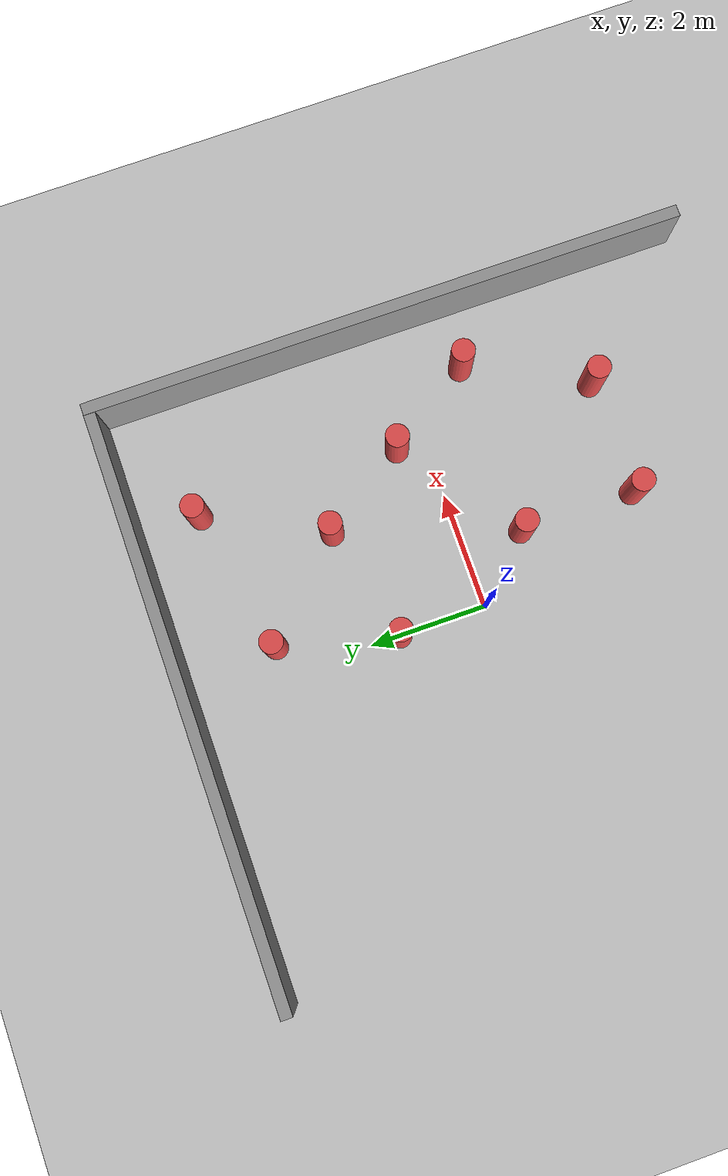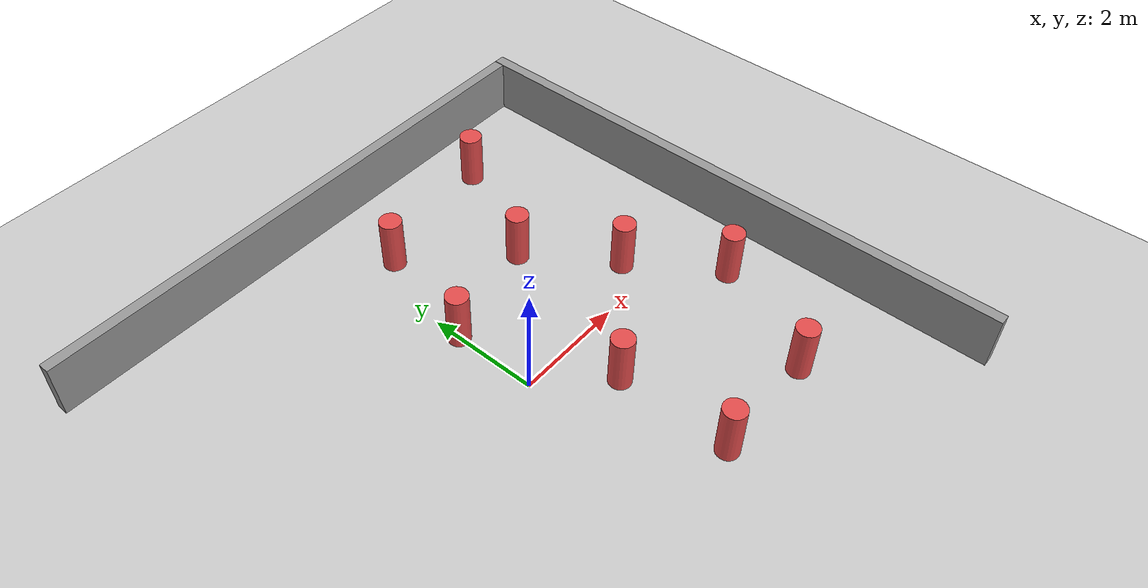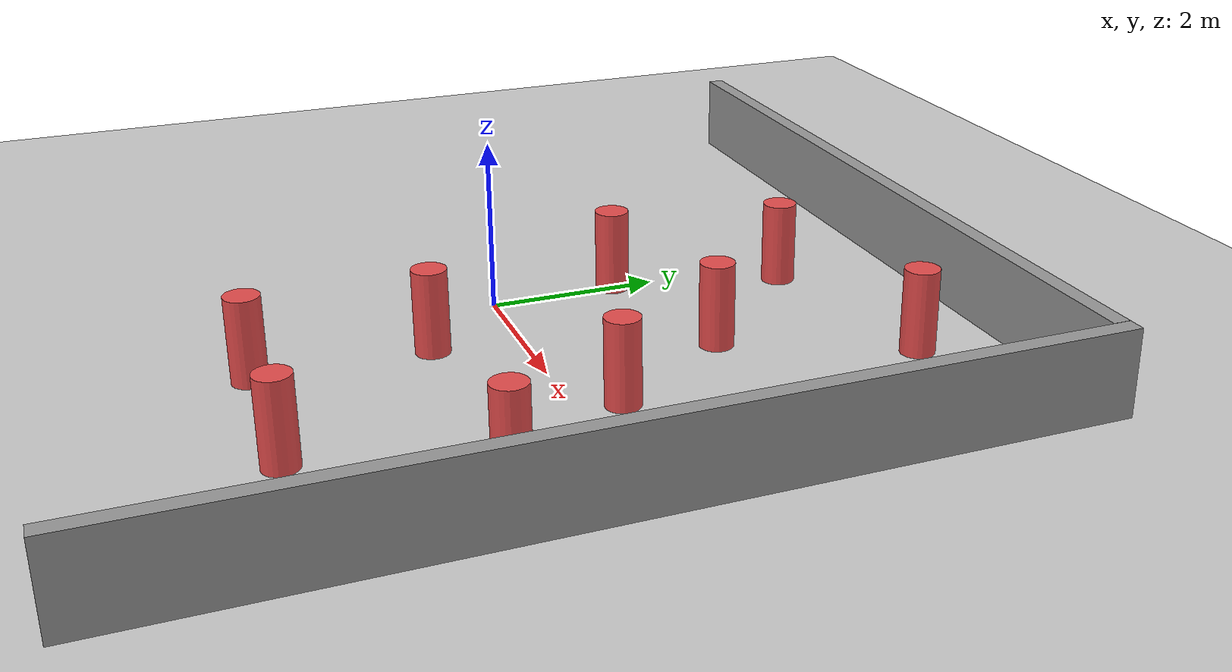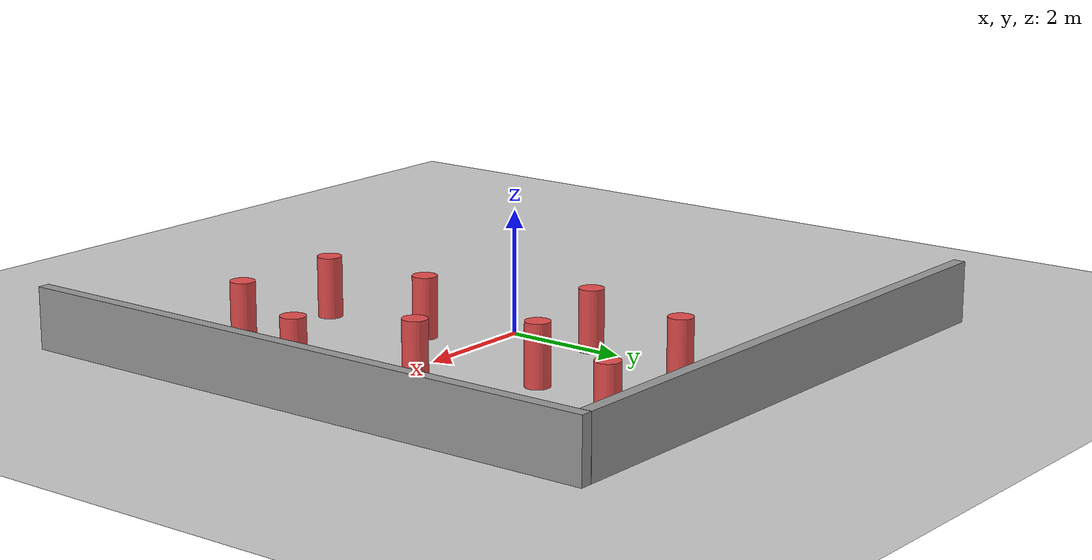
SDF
<sdf version="1.6">
 <world name="default">
  <model name="ground_plane">
   <pose>-4 3.5 0 0 -0 0</pose>
   <static>1</static>
   <link name="link">
    <collision name="collision">
     <geometry><plane><normal>0 0 1</normal><size>100 100</size></plane></geometry>
     <surface>
      <contact><collide_bitmask>65535</collide_bitmask></contact>
      <friction><ode><mu>100</mu><mu2>50</mu2></ode></friction>
     </surface>
    </collision>
    <visual name="visual">
     <cast_shadows>0</cast_shadows>
     <geometry><plane><normal>0 0 1</normal><size>100 100</size></plane></geometry>
     <material>
      <script><uri>file://media/materials/scripts/gazebo.material</uri><name>Gazebo/Grey</name></script>
     </material>
    </visual>
   </link>
  </model>
  <model name="Wall_10m_1_0">
   <link name="link">
    <pose>0 0 0.5 0 -0 0</pose>
    <inertial>
     <mass>1</mass>
     <inertia><ixx>1</ixx><ixy>0</ixy><ixz>0</ixz><iyy>1</iyy><iyz>0</iyz><izz>1</izz></inertia>
    </inertial>
    <visual name="visual">
     <cast_shadows>0</cast_shadows>
     <geometry><box><size>10 0.2 1</size></box></geometry>
     <material>
      <script>
       <uri>model://grey_wall/materials/scripts</uri>
       <uri>model://grey_wall/materials/textures</uri>
       <name>vrc/grey_wall</name>
      </script>
      <shader type="vertex"><normal_map>__default__</normal_map></shader>
      <ambient>1 1 1 1</ambient>
      <diffuse>1 1 1 1</diffuse>
      <specular>0 0 0 1</specular>
      <emissive>0 0 0 1</emissive>
     </material>
    </visual>
    <collision name="collision">
     <geometry><box><size>10 0.2 1</size></box></geometry>
     <surface>
      <friction>
       <ode><mu>1</mu><mu2>1</mu2><fdir1>0 0 0</fdir1><slip1>0</slip1><slip2>0</slip2></ode>
       <torsional>
        <coefficient>1</coefficient>
        <patch_radius>0</patch_radius>
        <surface_radius>0</surface_radius>
        <use_patch_radius>1</use_patch_radius>
        <ode><slip>0</slip></ode>
       </torsional>
      </friction>
      <bounce><restitution_coefficient>0</restitution_coefficient><threshold>1e+06</threshold></bounce>
      <contact>
       <collide_without_contact>0</collide_without_contact>
       <collide_without_contact_bitmask>1</collide_without_contact_bitmask>
       <collide_bitmask>1</collide_bitmask>
       <ode>
        <soft_cfm>0</soft_cfm>
        <soft_erp>0.2</soft_erp>
        <kp>1e+13</kp>
        <kd>1</kd>
        <max_vel>0.01</max_vel>
        <min_depth>0</min_depth>
       </ode>
       <bullet>
        <split_impulse>1</split_impulse>
        <split_impulse_penetration_threshold>-0.01</split_impulse_penetration_threshold>
        <soft_cfm>0</soft_cfm>
        <soft_erp>0.2</soft_erp>
        <kp>1e+13</kp>
        <kd>1</kd>
       </bullet>
      </contact>
     </surface>
    </collision>
   </link>
   <static>1</static>
   <pose>0 5.1 0 0 -0 0</pose>
  </model>
  <model name="Wall_10m">
   <link name="link">
    <pose>0 0 0.5 0 -0 0</pose>
    <inertial>
     <mass>1</mass>
     <inertia><ixx>1</ixx><ixy>0</ixy><ixz>0</ixz><iyy>1</iyy><iyz>0</iyz><izz>1</izz></inertia>
    </inertial>
    <visual name="visual">
     <cast_shadows>0</cast_shadows>
     <geometry><box><size>10.4 0.2 1</size></box></geometry>
     <material>
      <script>
       <uri>model://grey_wall/materials/scripts</uri>
       <uri>model://grey_wall/materials/textures</uri>
       <name>vrc/grey_wall</name>
      </script>
      <shader type="vertex"><normal_map>__default__</normal_map></shader>
      <ambient>1 1 1 1</ambient>
      <diffuse>1 1 1 1</diffuse>
      <specular>0 0 0 1</specular>
      <emissive>0 0 0 1</emissive>
     </material>
    </visual>
    <collision name="collision">
     <geometry><box><size>10 0.2 1</size></box></geometry>
     <surface>
      <friction>
       <ode><mu>1</mu><mu2>1</mu2><fdir1>0 0 0</fdir1><slip1>0</slip1><slip2>0</slip2></ode>
       <torsional>
        <coefficient>1</coefficient>
        <patch_radius>0</patch_radius>
        <surface_radius>0</surface_radius>
        <use_patch_radius>1</use_patch_radius>
        <ode><slip>0</slip></ode>
       </torsional>
      </friction>
      <bounce><restitution_coefficient>0</restitution_coefficient><threshold>1e+06</threshold></bounce>
      <contact>
       <collide_without_contact>0</collide_without_contact>
       <collide_without_contact_bitmask>1</collide_without_contact_bitmask>
       <collide_bitmask>1</collide_bitmask>
       <ode>
        <soft_cfm>0</soft_cfm>
        <soft_erp>0.2</soft_erp>
        <kp>1e+13</kp>
        <kd>1</kd>
        <max_vel>0.01</max_vel>
        <min_depth>0</min_depth>
       </ode>
       <bullet>
        <split_impulse>1</split_impulse>
        <split_impulse_penetration_threshold>-0.01</split_impulse_penetration_threshold>
        <soft_cfm>0</soft_cfm>
        <soft_erp>0.2</soft_erp>
        <kp>1e+13</kp>
        <kd>1</kd>
       </bullet>
      </contact>
     </surface>
    </collision>
   </link>
   <static>1</static>
   <pose>5.1 0 0 0 -0 1.57</pose>
  </model>
  <model name="cyliner_0.25_0_clone_clone_0_clone_9">
   <link name="link">
    <inertial>
     <mass>10000</mass>
     <inertia><ixx>989.583</ixx><ixy>0</ixy><ixz>0</ixz><iyy>989.583</iyy><iyz>0</iyz><izz>312.5</izz></inertia>
    </inertial>
    <visual name="visual">
     <geometry><cylinder><radius>0.2</radius><length>1</length></cylinder></geometry>
     <material>
      <script><name>Gazebo/Grey</name><uri>file://media/materials/scripts/gazebo.material</uri></script>
      <shader type="vertex"><normal_map>__default__</normal_map></shader>
      <ambient>0.9 0.3 0.3 1</ambient>
      <diffuse>0.7 0.7 0.7 1</diffuse>
      <specular>0.01 0.01 0.01 1</specular>
      <emissive>0 0 0 1</emissive>
     </material>
    </visual>
    <collision name="collision">
     <geometry><cylinder><radius>0.19</radius><length>1</length></cylinder></geometry>
     <surface>
      <friction>
       <ode><mu>1</mu><mu2>1</mu2><fdir1>0 0 0</fdir1><slip1>0</slip1><slip2>0</slip2></ode>
       <torsional>
        <coefficient>1</coefficient>
        <patch_radius>0</patch_radius>
        <surface_radius>0</surface_radius>
        <use_patch_radius>1</use_patch_radius>
        <ode><slip>0</slip></ode>
       </torsional>
      </friction>
      <bounce><restitution_coefficient>0</restitution_coefficient><threshold>1e+06</threshold></bounce>
      <contact>
       <collide_without_contact>0</collide_without_contact>
       <collide_without_contact_bitmask>1</collide_without_contact_bitmask>
       <collide_bitmask>1</collide_bitmask>
       <ode>
        <soft_cfm>0</soft_cfm>
        <soft_erp>0.2</soft_erp>
        <kp>1e+13</kp>
        <kd>1</kd>
        <max_vel>0.01</max_vel>
        <min_depth>0</min_depth>
       </ode>
       <bullet>
        <split_impulse>1</split_impulse>
        <split_impulse_penetration_threshold>-0.01</split_impulse_penetration_threshold>
        <soft_cfm>0</soft_cfm>
        <soft_erp>0.2</soft_erp>
        <kp>1e+13</kp>
        <kd>1</kd>
       </bullet>
      </contact>
     </surface>
    </collision>
   </link>
   <static>0</static>
   <pose>-0 1.5 0.5 0 -0 0</pose>
  </model>
  <model name="cyliner_0.25_0_clone_clone_0_clone_3">
   <link name="link">
    <inertial>
     <mass>10000</mass>
     <inertia><ixx>989.583</ixx><ixy>0</ixy><ixz>0</ixz><iyy>989.583</iyy><iyz>0</iyz><izz>312.5</izz></inertia>
    </inertial>
    <visual name="visual">
     <geometry><cylinder><radius>0.2</radius><length>1</length></cylinder></geometry>
     <material>
      <script><name>Gazebo/Grey</name><uri>file://media/materials/scripts/gazebo.material</uri></script>
      <shader type="vertex"><normal_map>__default__</normal_map></shader>
      <ambient>0.9 0.3 0.3 1</ambient>
      <diffuse>0.7 0.7 0.7 1</diffuse>
      <specular>0.01 0.01 0.01 1</specular>
      <emissive>0 0 0 1</emissive>
     </material>
    </visual>
    <collision name="collision">
     <geometry><cylinder><radius>0.19</radius><length>1</length></cylinder></geometry>
     <surface>
      <friction>
       <ode><mu>1</mu><mu2>1</mu2><fdir1>0 0 0</fdir1><slip1>0</slip1><slip2>0</slip2></ode>
       <torsional>
        <coefficient>1</coefficient>
        <patch_radius>0</patch_radius>
        <surface_radius>0</surface_radius>
        <use_patch_radius>1</use_patch_radius>
        <ode><slip>0</slip></ode>
       </torsional>
      </friction>
      <bounce><restitution_coefficient>0</restitution_coefficient><threshold>1e+06</threshold></bounce>
      <contact>
       <collide_without_contact>0</collide_without_contact>
       <collide_without_contact_bitmask>1</collide_without_contact_bitmask>
       <collide_bitmask>1</collide_bitmask>
       <ode>
        <soft_cfm>0</soft_cfm>
        <soft_erp>0.2</soft_erp>
        <kp>1e+13</kp>
        <kd>1</kd>
        <max_vel>0.01</max_vel>
        <min_depth>0</min_depth>
       </ode>
       <bullet>
        <split_impulse>1</split_impulse>
        <split_impulse_penetration_threshold>-0.01</split_impulse_penetration_threshold>
        <soft_cfm>0</soft_cfm>
        <soft_erp>0.2</soft_erp>
        <kp>1e+13</kp>
        <kd>1</kd>
       </bullet>
      </contact>
     </surface>
    </collision>
   </link>
   <static>0</static>
   <pose>3 4 0.5 0 -0 0</pose>
  </model>
  <model name="cyliner_0.25_0_clone_clone_0_clone_6">
   <link name="link">
    <inertial>
     <mass>10000</mass>
     <inertia><ixx>989.583</ixx><ixy>0</ixy><ixz>0</ixz><iyy>989.583</iyy><iyz>0</iyz><izz>312.5</izz></inertia>
    </inertial>
    <visual name="visual">
     <geometry><cylinder><radius>0.2</radius><length>1</length></cylinder></geometry>
     <material>
      <script><name>Gazebo/Grey</name><uri>file://media/materials/scripts/gazebo.material</uri></script>
      <shader type="vertex"><normal_map>__default__</normal_map></shader>
      <ambient>0.9 0.3 0.3 1</ambient>
      <diffuse>0.7 0.7 0.7 1</diffuse>
      <specular>0.01 0.01 0.01 1</specular>
      <emissive>0 0 0 1</emissive>
     </material>
    </visual>
    <collision name="collision">
     <geometry><cylinder><radius>0.19</radius><length>1</length></cylinder></geometry>
     <surface>
      <friction>
       <ode><mu>1</mu><mu2>1</mu2><fdir1>0 0 0</fdir1><slip1>0</slip1><slip2>0</slip2></ode>
       <torsional>
        <coefficient>1</coefficient>
        <patch_radius>0</patch_radius>
        <surface_radius>0</surface_radius>
        <use_patch_radius>1</use_patch_radius>
        <ode><slip>0</slip></ode>
       </torsional>
      </friction>
      <bounce><restitution_coefficient>0</restitution_coefficient><threshold>1e+06</threshold></bounce>
      <contact>
       <collide_without_contact>0</collide_without_contact>
       <collide_without_contact_bitmask>1</collide_without_contact_bitmask>
       <collide_bitmask>1</collide_bitmask>
       <ode>
        <soft_cfm>0</soft_cfm>
        <soft_erp>0.2</soft_erp>
        <kp>1e+13</kp>
        <kd>1</kd>
        <max_vel>0.01</max_vel>
        <min_depth>0</min_depth>
       </ode>
       <bullet>
        <split_impulse>1</split_impulse>
        <split_impulse_penetration_threshold>-0.01</split_impulse_penetration_threshold>
        <soft_cfm>0</soft_cfm>
        <soft_erp>0.2</soft_erp>
        <kp>1e+13</kp>
        <kd>1</kd>
       </bullet>
      </contact>
     </surface>
    </collision>
   </link>
   <static>0</static>
   <pose>0.5 3.5 0.5 0 -0 0</pose>
  </model>
  <model name="cyliner_0.25_0_clone_clone_0_clone_2">
   <link name="link">
    <inertial>
     <mass>10000</mass>
     <inertia><ixx>989.583</ixx><ixy>0</ixy><ixz>0</ixz><iyy>989.583</iyy><iyz>0</iyz><izz>312.5</izz></inertia>
    </inertial>
    <visual name="visual">
     <geometry><cylinder><radius>0.2</radius><length>1</length></cylinder></geometry>
     <material>
      <script><name>Gazebo/Grey</name><uri>file://media/materials/scripts/gazebo.material</uri></script>
      <shader type="vertex"><normal_map>__default__</normal_map></shader>
      <ambient>0.9 0.3 0.3 1</ambient>
      <diffuse>0.7 0.7 0.7 1</diffuse>
      <specular>0.01 0.01 0.01 1</specular>
      <emissive>0 0 0 1</emissive>
     </material>
    </visual>
    <collision name="collision">
     <geometry><cylinder><radius>0.19</radius><length>1</length></cylinder></geometry>
     <surface>
      <friction>
       <ode><mu>1</mu><mu2>1</mu2><fdir1>0 0 0</fdir1><slip1>0</slip1><slip2>0</slip2></ode>
       <torsional>
        <coefficient>1</coefficient>
        <patch_radius>0</patch_radius>
        <surface_radius>0</surface_radius>
        <use_patch_radius>1</use_patch_radius>
        <ode><slip>0</slip></ode>
       </torsional>
      </friction>
      <bounce><restitution_coefficient>0</restitution_coefficient><threshold>1e+06</threshold></bounce>
      <contact>
       <collide_without_contact>0</collide_without_contact>
       <collide_without_contact_bitmask>1</collide_without_contact_bitmask>
       <collide_bitmask>1</collide_bitmask>
       <ode>
        <soft_cfm>0</soft_cfm>
        <soft_erp>0.2</soft_erp>
        <kp>1e+13</kp>
        <kd>1</kd>
        <max_vel>0.01</max_vel>
        <min_depth>0</min_depth>
       </ode>
       <bullet>
        <split_impulse>1</split_impulse>
        <split_impulse_penetration_threshold>-0.01</split_impulse_penetration_threshold>
        <soft_cfm>0</soft_cfm>
        <soft_erp>0.2</soft_erp>
        <kp>1e+13</kp>
        <kd>1</kd>
       </bullet>
      </contact>
     </surface>
    </collision>
   </link>
   <static>0</static>
   <pose>2 2 0.5 0 -0 0</pose>
  </model>
  <model name="cyliner_0.25_0_clone_clone_0_clone_8">
   <link name="link">
    <inertial>
     <mass>10000</mass>
     <inertia><ixx>989.583</ixx><ixy>0</ixy><ixz>0</ixz><iyy>989.583</iyy><iyz>0</iyz><izz>312.5</izz></inertia>
    </inertial>
    <visual name="visual">
     <geometry><cylinder><radius>0.2</radius><length>1</length></cylinder></geometry>
     <material>
      <script><name>Gazebo/Grey</name><uri>file://media/materials/scripts/gazebo.material</uri></script>
      <shader type="vertex"><normal_map>__default__</normal_map></shader>
      <ambient>0.9 0.3 0.3 1</ambient>
      <diffuse>0.7 0.7 0.7 1</diffuse>
      <specular>0.01 0.01 0.01 1</specular>
      <emissive>0 0 0 1</emissive>
     </material>
    </visual>
    <collision name="collision">
     <geometry><cylinder><radius>0.19</radius><length>1</length></cylinder></geometry>
     <surface>
      <friction>
       <ode><mu>1</mu><mu2>1</mu2><fdir1>0 0 0</fdir1><slip1>0</slip1><slip2>0</slip2></ode>
       <torsional>
        <coefficient>1</coefficient>
        <patch_radius>0</patch_radius>
        <surface_radius>0</surface_radius>
        <use_patch_radius>1</use_patch_radius>
        <ode><slip>0</slip></ode>
       </torsional>
      </friction>
      <bounce><restitution_coefficient>0</restitution_coefficient><threshold>1e+06</threshold></bounce>
      <contact>
       <collide_without_contact>0</collide_without_contact>
       <collide_without_contact_bitmask>1</collide_without_contact_bitmask>
       <collide_bitmask>1</collide_bitmask>
       <ode>
        <soft_cfm>0</soft_cfm>
        <soft_erp>0.2</soft_erp>
        <kp>1e+13</kp>
        <kd>1</kd>
        <max_vel>0.01</max_vel>
        <min_depth>0</min_depth>
       </ode>
       <bullet>
        <split_impulse>1</split_impulse>
        <split_impulse_penetration_threshold>-0.01</split_impulse_penetration_threshold>
        <soft_cfm>0</soft_cfm>
        <soft_erp>0.2</soft_erp>
        <kp>1e+13</kp>
        <kd>1</kd>
       </bullet>
      </contact>
     </surface>
    </collision>
   </link>
   <static>0</static>
   <pose>3 0.5 0.5 0 -0 0</pose>
  </model>
  <model name="cyliner_0.25_0_clone_clone_0_clone_1">
   <link name="link">
    <inertial>
     <mass>10000</mass>
     <inertia><ixx>989.583</ixx><ixy>0</ixy><ixz>0</ixz><iyy>989.583</iyy><iyz>0</iyz><izz>312.5</izz></inertia>
    </inertial>
    <visual name="visual">
     <geometry><cylinder><radius>0.2</radius><length>1</length></cylinder></geometry>
     <material>
      <script><name>Gazebo/Grey</name><uri>file://media/materials/scripts/gazebo.material</uri></script>
      <shader type="vertex"><normal_map>__default__</normal_map></shader>
      <ambient>0.9 0.3 0.3 1</ambient>
      <diffuse>0.7 0.7 0.7 1</diffuse>
      <specular>0.01 0.01 0.01 1</specular>
      <emissive>0 0 0 1</emissive>
     </material>
    </visual>
    <collision name="collision">
     <geometry><cylinder><radius>0.19</radius><length>1</length></cylinder></geometry>
     <surface>
      <friction>
       <ode><mu>1</mu><mu2>1</mu2><fdir1>0 0 0</fdir1><slip1>0</slip1><slip2>0</slip2></ode>
       <torsional>
        <coefficient>1</coefficient>
        <patch_radius>0</patch_radius>
        <surface_radius>0</surface_radius>
        <use_patch_radius>1</use_patch_radius>
        <ode><slip>0</slip></ode>
       </torsional>
      </friction>
      <bounce><restitution_coefficient>0</restitution_coefficient><threshold>1e+06</threshold></bounce>
      <contact>
       <collide_without_contact>0</collide_without_contact>
       <collide_without_contact_bitmask>1</collide_without_contact_bitmask>
       <collide_bitmask>1</collide_bitmask>
       <ode>
        <soft_cfm>0</soft_cfm>
        <soft_erp>0.2</soft_erp>
        <kp>1e+13</kp>
        <kd>1</kd>
        <max_vel>0.01</max_vel>
        <min_depth>0</min_depth>
       </ode>
       <bullet>
        <split_impulse>1</split_impulse>
        <split_impulse_penetration_threshold>-0.01</split_impulse_penetration_threshold>
        <soft_cfm>0</soft_cfm>
        <soft_erp>0.2</soft_erp>
        <kp>1e+13</kp>
        <kd>1</kd>
       </bullet>
      </contact>
     </surface>
    </collision>
   </link>
   <static>0</static>
   <pose>4 -1 0.5 0 -0 0</pose>
  </model>
  <model name="cyliner_0.25_0_clone_clone_0_clone">
   <link name="link">
    <inertial>
     <mass>10000</mass>
     <inertia><ixx>989.583</ixx><ixy>0</ixy><ixz>0</ixz><iyy>989.583</iyy><iyz>0</iyz><izz>312.5</izz></inertia>
    </inertial>
    <visual name="visual">
     <geometry><cylinder><radius>0.2</radius><length>1</length></cylinder></geometry>
     <material>
      <script><name>Gazebo/Grey</name><uri>file://media/materials/scripts/gazebo.material</uri></script>
      <shader type="vertex"><normal_map>__default__</normal_map></shader>
      <ambient>0.9 0.3 0.3 1</ambient>
      <diffuse>0.7 0.7 0.7 1</diffuse>
      <specular>0.01 0.01 0.01 1</specular>
      <emissive>0 0 0 1</emissive>
     </material>
    </visual>
    <collision name="collision">
     <geometry><cylinder><radius>0.19</radius><length>1</length></cylinder></geometry>
     <surface>
      <friction>
       <ode><mu>1</mu><mu2>1</mu2><fdir1>0 0 0</fdir1><slip1>0</slip1><slip2>0</slip2></ode>
       <torsional>
        <coefficient>1</coefficient>
        <patch_radius>0</patch_radius>
        <surface_radius>0</surface_radius>
        <use_patch_radius>1</use_patch_radius>
        <ode><slip>0</slip></ode>
       </torsional>
      </friction>
      <bounce><restitution_coefficient>0</restitution_coefficient><threshold>1e+06</threshold></bounce>
      <contact>
       <collide_without_contact>0</collide_without_contact>
       <collide_without_contact_bitmask>1</collide_without_contact_bitmask>
       <collide_bitmask>1</collide_bitmask>
       <ode>
        <soft_cfm>0</soft_cfm>
        <soft_erp>0.2</soft_erp>
        <kp>1e+13</kp>
        <kd>1</kd>
        <max_vel>0.01</max_vel>
        <min_depth>0</min_depth>
       </ode>
       <bullet>
        <split_impulse>1</split_impulse>
        <split_impulse_penetration_threshold>-0.01</split_impulse_penetration_threshold>
        <soft_cfm>0</soft_cfm>
        <soft_erp>0.2</soft_erp>
        <kp>1e+13</kp>
        <kd>1</kd>
       </bullet>
      </contact>
     </surface>
    </collision>
   </link>
   <static>0</static>
   <pose>1 -1 0.5 0 -0 0</pose>
  </model>
  <model name="cyliner_0.25_0_clone_clone_0_clone_7">
   <link name="link">
    <inertial>
     <mass>10000</mass>
     <inertia><ixx>989.583</ixx><ixy>0</ixy><ixz>0</ixz><iyy>989.583</iyy><iyz>0</iyz><izz>312.5</izz></inertia>
    </inertial>
    <visual name="visual">
     <geometry><cylinder><radius>0.2</radius><length>1</length></cylinder></geometry>
     <material>
      <script><name>Gazebo/Grey</name><uri>file://media/materials/scripts/gazebo.material</uri></script>
      <shader type="vertex"><normal_map>__default__</normal_map></shader>
      <ambient>0.9 0.3 0.3 1</ambient>
      <diffuse>0.7 0.7 0.7 1</diffuse>
      <specular>0.01 0.01 0.01 1</specular>
      <emissive>0 0 0 1</emissive>
     </material>
    </visual>
    <collision name="collision">
     <geometry><cylinder><radius>0.19</radius><length>1</length></cylinder></geometry>
     <surface>
      <friction>
       <ode><mu>1</mu><mu2>1</mu2><fdir1>0 0 0</fdir1><slip1>0</slip1><slip2>0</slip2></ode>
       <torsional>
        <coefficient>1</coefficient>
        <patch_radius>0</patch_radius>
        <surface_radius>0</surface_radius>
        <use_patch_radius>1</use_patch_radius>
        <ode><slip>0</slip></ode>
       </torsional>
      </friction>
      <bounce><restitution_coefficient>0</restitution_coefficient><threshold>1e+06</threshold></bounce>
      <contact>
       <collide_without_contact>0</collide_without_contact>
       <collide_without_contact_bitmask>1</collide_without_contact_bitmask>
       <collide_bitmask>1</collide_bitmask>
       <ode>
        <soft_cfm>0</soft_cfm>
        <soft_erp>0.2</soft_erp>
        <kp>1e+13</kp>
        <kd>1</kd>
        <max_vel>0.01</max_vel>
        <min_depth>0</min_depth>
       </ode>
       <bullet>
        <split_impulse>1</split_impulse>
        <split_impulse_penetration_threshold>-0.01</split_impulse_penetration_threshold>
        <soft_cfm>0</soft_cfm>
        <soft_erp>0.2</soft_erp>
        <kp>1e+13</kp>
        <kd>1</kd>
       </bullet>
      </contact>
     </surface>
    </collision>
   </link>
   <static>0</static>
   <pose>1 -3 0.5 0 -0 0</pose>
  </model>
  <model name="cyliner_0.25_0_clone_clone_0_clone_0">
   <link name="link">
    <inertial>
     <mass>10000</mass>
     <inertia><ixx>989.583</ixx><ixy>0</ixy><ixz>0</ixz><iyy>989.583</iyy><iyz>0</iyz><izz>312.5</izz></inertia>
    </inertial>
    <visual name="visual">
     <geometry><cylinder><radius>0.2</radius><length>1</length></cylinder></geometry>
     <material>
      <script><name>Gazebo/Grey</name><uri>file://media/materials/scripts/gazebo.material</uri></script>
      <shader type="vertex"><normal_map>__default__</normal_map></shader>
      <ambient>0.9 0.3 0.3 1</ambient>
      <diffuse>0.7 0.7 0.7 1</diffuse>
      <specular>0.01 0.01 0.01 1</specular>
      <emissive>0 0 0 1</emissive>
     </material>
    </visual>
    <collision name="collision">
     <geometry><cylinder><radius>0.19</radius><length>1</length></cylinder></geometry>
     <surface>
      <friction>
       <ode><mu>1</mu><mu2>1</mu2><fdir1>0 0 0</fdir1><slip1>0</slip1><slip2>0</slip2></ode>
       <torsional>
        <coefficient>1</coefficient>
        <patch_radius>0</patch_radius>
        <surface_radius>0</surface_radius>
        <use_patch_radius>1</use_patch_radius>
        <ode><slip>0</slip></ode>
       </torsional>
      </friction>
      <bounce><restitution_coefficient>0</restitution_coefficient><threshold>1e+06</threshold></bounce>
      <contact>
       <collide_without_contact>0</collide_without_contact>
       <collide_without_contact_bitmask>1</collide_without_contact_bitmask>
       <collide_bitmask>1</collide_bitmask>
       <ode>
        <soft_cfm>0</soft_cfm>
        <soft_erp>0.2</soft_erp>
        <kp>1e+13</kp>
        <kd>1</kd>
        <max_vel>0.01</max_vel>
        <min_depth>0</min_depth>
       </ode>
       <bullet>
        <split_impulse>1</split_impulse>
        <split_impulse_penetration_threshold>-0.01</split_impulse_penetration_threshold>
        <soft_cfm>0</soft_cfm>
        <soft_erp>0.2</soft_erp>
        <kp>1e+13</kp>
        <kd>1</kd>
       </bullet>
      </contact>
     </surface>
    </collision>
   </link>
   <static>0</static>
   <pose>3 -3 0.5 0 -0 0</pose>
  </model>
 </world>
</sdf>
